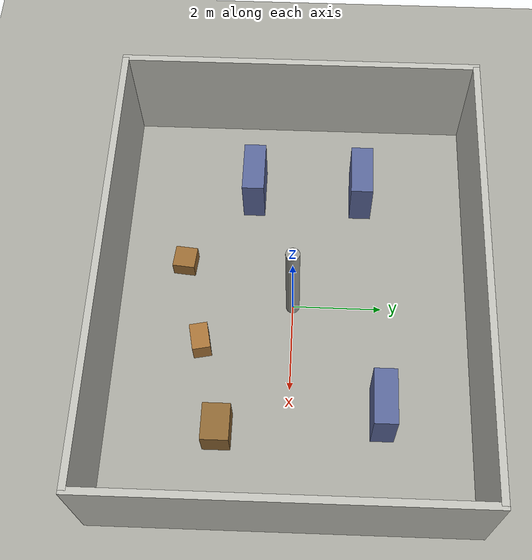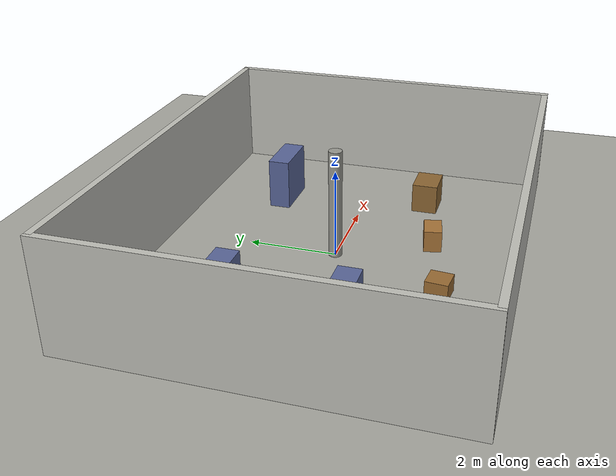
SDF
<?xml version="1.0" ?>
<sdf version="1.9">
  <world name="warehouse">

    <plugin filename="gz-sim-physics-system"
            name="gz::sim::systems::Physics"/>
    <plugin filename="gz-sim-scene-broadcaster-system"
            name="gz::sim::systems::SceneBroadcaster"/>
    <plugin filename="gz-sim-user-commands-system"
            name="gz::sim::systems::UserCommands"/>
    <plugin filename="gz-sim-sensors-system"
            name="gz::sim::systems::Sensors">
      <render_engine>ogre2</render_engine>
    </plugin>
    <plugin filename="gz-sim-contact-system"
            name="gz::sim::systems::Contact"/>

    <light type="directional" name="warehouse_light">
      <cast_shadows>true</cast_shadows>
      <pose>0 0 10 0 0 0</pose>
      <diffuse>0.9 0.9 0.85 1</diffuse>
      <specular>0.3 0.3 0.3 1</specular>
      <attenuation>
        <range>100</range>
        <constant>0.9</constant>
        <linear>0.01</linear>
        <quadratic>0.001</quadratic>
      </attenuation>
      <direction>-0.3 0.2 -1.0</direction>
    </light>

    <!-- Lumière d'appoint pour réduire les ombres trop dures -->
    <light type="directional" name="fill_light">
      <cast_shadows>false</cast_shadows>
      <pose>0 0 8 0 0 0</pose>
      <diffuse>0.4 0.4 0.45 1</diffuse>
      <specular>0.1 0.1 0.1 1</specular>
      <direction>0.3 -0.2 -1.0</direction>
    </light>

    <!-- ============================================================
         SOL DE L'ENTREPÔT — grande surface plane en béton
         ============================================================ -->
    <model name="ground_plane">
      <static>true</static>
      <link name="link">
        <collision name="collision">
          <geometry>
            <plane>
              <normal>0 0 1</normal>
              <size>30 30</size>
            </plane>
          </geometry>
        </collision>
        <visual name="visual">
          <geometry>
            <plane>
              <normal>0 0 1</normal>
              <size>30 30</size>
            </plane>
          </geometry>
          <material>
            <ambient>0.6 0.6 0.58 1</ambient>
            <diffuse>0.65 0.65 0.62 1</diffuse>
            <specular>0.1 0.1 0.1 1</specular>
          </material>
        </visual>
      </link>
    </model>

    <!-- ============================================================
         MURS D'ENCEINTE — délimitent la zone navigable (10×8 m)
         ============================================================ -->
    <!-- Mur Nord -->
    <model name="wall_north">
      <static>true</static>
      <pose>0 4 1.25 0 0 0</pose>
      <link name="link">
        <collision name="collision">
          <geometry><box><size>10 0.15 2.5</size></box></geometry>
        </collision>
        <visual name="visual">
          <geometry><box><size>10 0.15 2.5</size></box></geometry>
          <material>
            <ambient>0.7 0.7 0.68 1</ambient>
            <diffuse>0.75 0.75 0.72 1</diffuse>
          </material>
        </visual>
      </link>
    </model>

    <!-- Mur Sud -->
    <model name="wall_south">
      <static>true</static>
      <pose>0 -4 1.25 0 0 0</pose>
      <link name="link">
        <collision name="collision">
          <geometry><box><size>10 0.15 2.5</size></box></geometry>
        </collision>
        <visual name="visual">
          <geometry><box><size>10 0.15 2.5</size></box></geometry>
          <material>
            <ambient>0.7 0.7 0.68 1</ambient>
            <diffuse>0.75 0.75 0.72 1</diffuse>
          </material>
        </visual>
      </link>
    </model>

    <!-- Mur Est -->
    <model name="wall_east">
      <static>true</static>
      <pose>5 0 1.25 0 0 0</pose>
      <link name="link">
        <collision name="collision">
          <geometry><box><size>0.15 8.15 2.5</size></box></geometry>
        </collision>
        <visual name="visual">
          <geometry><box><size>0.15 8.15 2.5</size></box></geometry>
          <material>
            <ambient>0.7 0.7 0.68 1</ambient>
            <diffuse>0.75 0.75 0.72 1</diffuse>
          </material>
        </visual>
      </link>
    </model>

    <!-- Mur Ouest -->
    <model name="wall_west">
      <static>true</static>
      <pose>-5 0 1.25 0 0 0</pose>
      <link name="link">
        <collision name="collision">
          <geometry><box><size>0.15 8.15 2.5</size></box></geometry>
        </collision>
        <visual name="visual">
          <geometry><box><size>0.15 8.15 2.5</size></box></geometry>
          <material>
            <ambient>0.7 0.7 0.68 1</ambient>
            <diffuse>0.75 0.75 0.72 1</diffuse>
          </material>
        </visual>
      </link>
    </model>

    <!-- Étagère 1 — rangée gauche -->
    <model name="shelf_1">
      <static>true</static>
      <pose>-3.0 1.5 0.6 0 0 0</pose>
      <link name="link">
        <collision name="collision">
          <geometry><box><size>1.2 0.5 1.2</size></box></geometry>
        </collision>
        <visual name="visual">
          <geometry><box><size>1.2 0.5 1.2</size></box></geometry>
          <material>
            <ambient>0.3 0.35 0.55 1</ambient>
            <diffuse>0.35 0.4 0.6 1</diffuse>
          </material>
        </visual>
      </link>
    </model>

    <!-- Étagère 2 — rangée gauche (suite) -->
    <model name="shelf_2">
      <static>true</static>
      <pose>-3.0 -1.0 0.6 0 0 0</pose>
      <link name="link">
        <collision name="collision">
          <geometry><box><size>1.2 0.5 1.2</size></box></geometry>
        </collision>
        <visual name="visual">
          <geometry><box><size>1.2 0.5 1.2</size></box></geometry>
          <material>
            <ambient>0.3 0.35 0.55 1</ambient>
            <diffuse>0.35 0.4 0.6 1</diffuse>
          </material>
        </visual>
      </link>
    </model>

    <!-- Étagère 3 — rangée droite -->
    <model name="shelf_3">
      <static>true</static>
      <pose>2.5 2.0 0.6 0 0 0</pose>
      <link name="link">
        <collision name="collision">
          <geometry><box><size>1.2 0.5 1.2</size></box></geometry>
        </collision>
        <visual name="visual">
          <geometry><box><size>1.2 0.5 1.2</size></box></geometry>
          <material>
            <ambient>0.3 0.35 0.55 1</ambient>
            <diffuse>0.35 0.4 0.6 1</diffuse>
          </material>
        </visual>
      </link>
    </model>

    <!-- Palette 1 -->
    <model name="cardbox_stack_1">
      <static>true</static>
      <pose>1.0 -2.0 0.25 0 0 0.2</pose>
      <link name="link">
        <collision name="collision">
          <geometry><box><size>0.6 0.4 0.5</size></box></geometry>
        </collision>
        <visual name="visual">
          <geometry><box><size>0.6 0.4 0.5</size></box></geometry>
          <material>
            <ambient>0.55 0.38 0.18 1</ambient>
            <diffuse>0.65 0.45 0.22 1</diffuse>
          </material>
        </visual>
      </link>
    </model>

    <!-- Palette 2 -->
    <model name="cardbox_stack_2">
      <static>true</static>
      <pose>-1.0 -2.5 0.20 0 0 -0.1</pose>
      <link name="link">
        <collision name="collision">
          <geometry><box><size>0.5 0.5 0.4</size></box></geometry>
        </collision>
        <visual name="visual">
          <geometry><box><size>0.5 0.5 0.4</size></box></geometry>
          <material>
            <ambient>0.5 0.35 0.15 1</ambient>
            <diffuse>0.6 0.42 0.20 1</diffuse>
          </material>
        </visual>
      </link>
    </model>

    <!-- Palette 3 — grand empilement -->
    <model name="cardbox_stack_3">
      <static>true</static>
      <pose>3.0 -1.5 0.35 0 0 0</pose>
      <link name="link">
        <collision name="collision">
          <geometry><box><size>0.8 0.6 0.7</size></box></geometry>
        </collision>
        <visual name="visual">
          <geometry><box><size>0.8 0.6 0.7</size></box></geometry>
          <material>
            <ambient>0.45 0.32 0.15 1</ambient>
            <diffuse>0.55 0.40 0.20 1</diffuse>
          </material>
        </visual>
      </link>
    </model>

    <!-- ============================================================
         PILIER STRUCTUREL — colonne porteuse de l'entrepôt
         ============================================================ -->
    <model name="pillar_1">
      <static>true</static>
      <pose>0 0 1.25 0 0 0</pose>
      <link name="link">
        <collision name="collision">
          <geometry><cylinder><radius>0.15</radius><length>2.5</length></cylinder></geometry>
        </collision>
        <visual name="visual">
          <geometry><cylinder><radius>0.15</radius><length>2.5</length></cylinder></geometry>
          <material>
            <ambient>0.5 0.5 0.48 1</ambient>
            <diffuse>0.6 0.6 0.57 1</diffuse>
          </material>
        </visual>
      </link>
    </model>

  </world>
</sdf>
